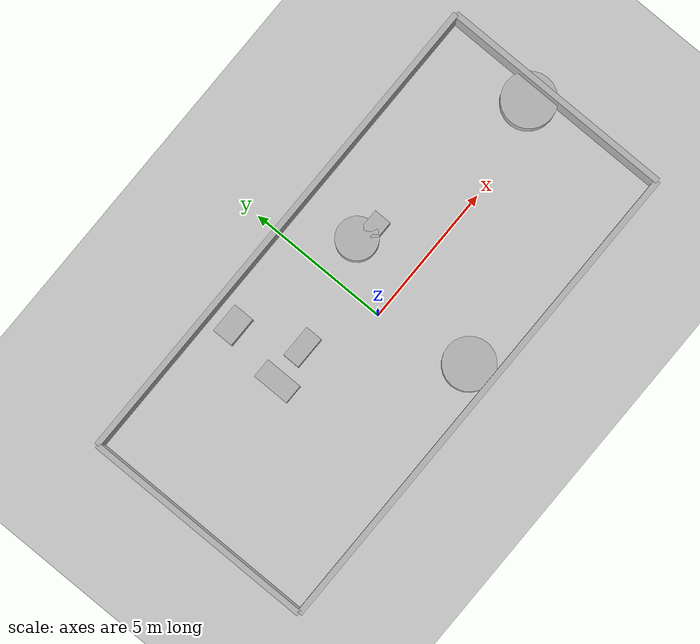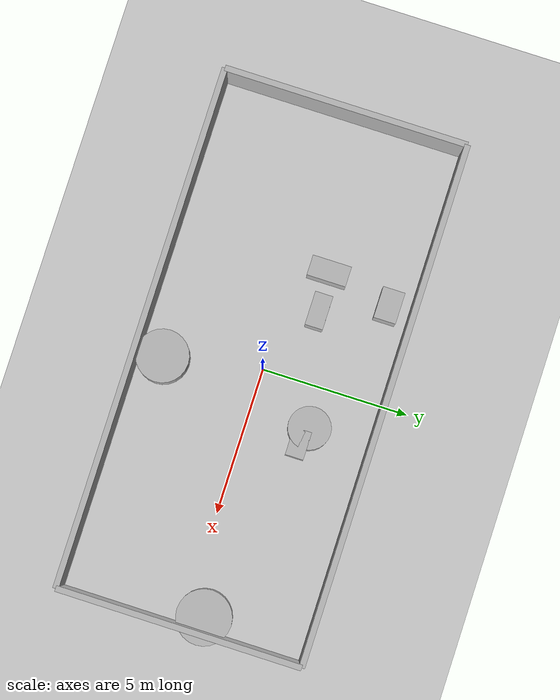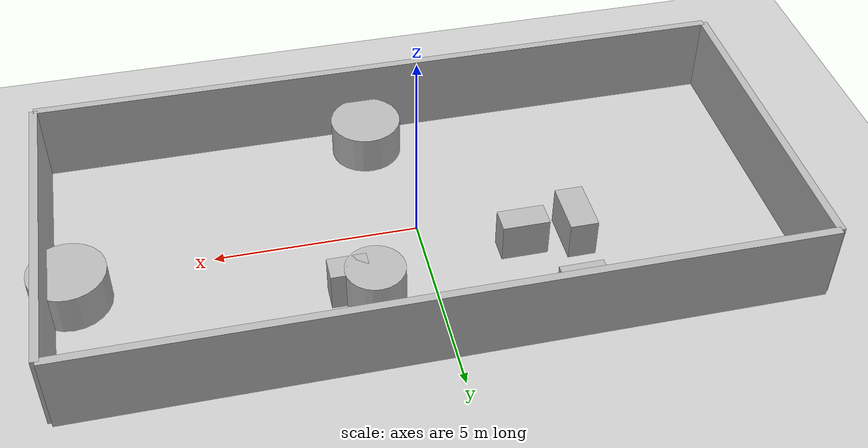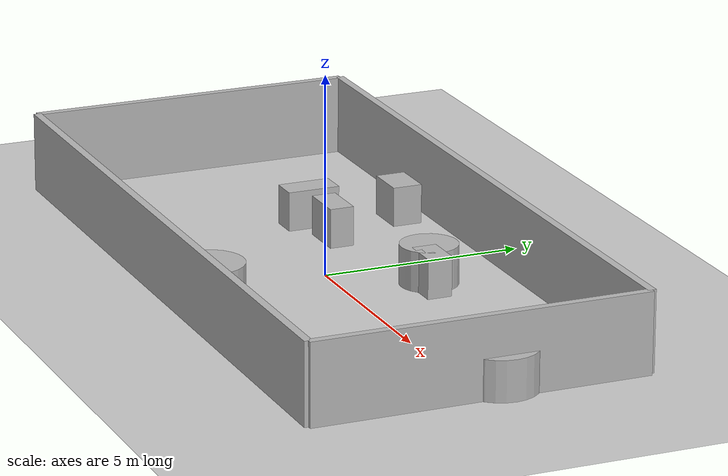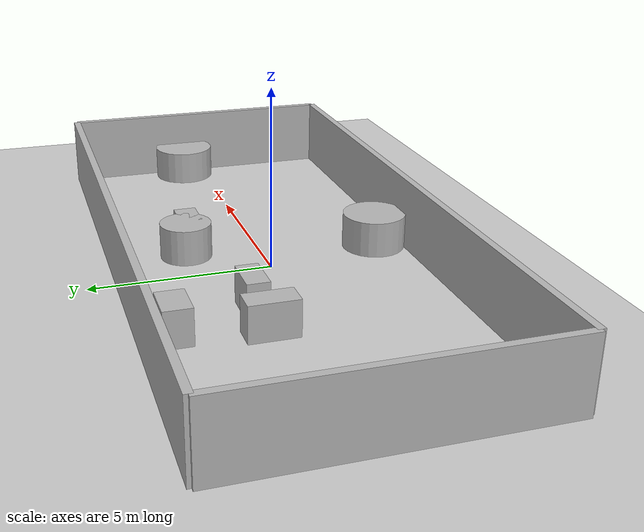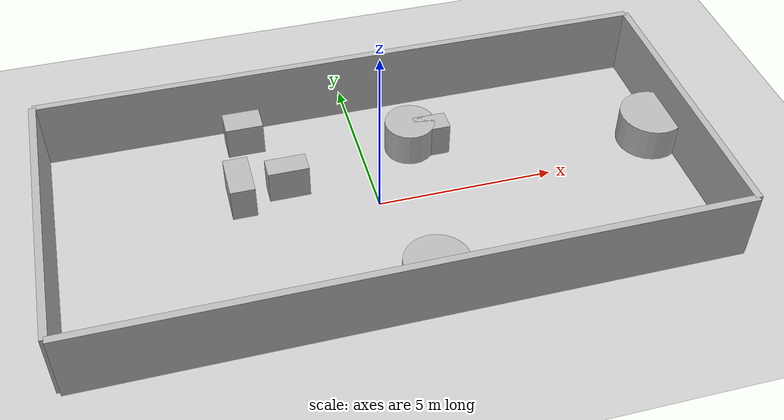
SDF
<?xml version="1.0"?>
<sdf version="1.6">
  <world name="env_7">

    <include><uri>model://ground_plane</uri></include>
    <include><uri>model://sun</uri></include>

    <!-- WALLS -->
    <model name="wall_north"><static>true</static><pose>0 4.14777569060814 1 0 0 0</pose>
      <link name="link"><collision name="collision">
        <geometry><box><size>17.733083181132695 0.2 2</size></box></geometry>
      </collision><visual name="visual">
        <geometry><box><size>17.733083181132695 0.2 2</size></box></geometry>
      </visual></link>
    </model>

    <model name="wall_south"><static>true</static><pose>0 -4.14777569060814 1 0 0 0</pose>
      <link name="link"><collision name="collision">
        <geometry><box><size>17.733083181132695 0.2 2</size></box></geometry>
      </collision><visual name="visual">
        <geometry><box><size>17.733083181132695 0.2 2</size></box></geometry>
      </visual></link>
    </model>

    <model name="wall_east"><static>true</static><pose>8.866541590566348 0 1 0 0 1.57</pose>
      <link name="link"><collision name="collision">
        <geometry><box><size>8.29555138121628 0.2 2</size></box></geometry>
      </collision><visual name="visual">
        <geometry><box><size>8.29555138121628 0.2 2</size></box></geometry>
      </visual></link>
    </model>

    <model name="wall_west"><static>true</static><pose>-8.866541590566348 0 1 0 0 1.57</pose>
      <link name="link"><collision name="collision">
        <geometry><box><size>8.29555138121628 0.2 2</size></box></geometry>
      </collision><visual name="visual">
        <geometry><box><size>8.29555138121628 0.2 2</size></box></geometry>
      </visual></link>
    </model>

    <!-- SENSOR -->

    <model name="lidar_sensor">
      <static>true</static>
      <pose>2.596444015979582 -1.7645165417060544 0.4 0 0 0</pose>
      <link name="link">
        <sensor name="lidar" type="ray">
          <pose>0 0 0 0 0 0</pose>
          <visualize>true</visualize>
          <always_on>true</always_on>
          <update_rate>10</update_rate>
          <ray>
            <scan><horizontal>
              <samples>180</samples>
              <resolution>1</resolution>
              <min_angle>-3.14159</min_angle>
              <max_angle>3.14159</max_angle>
            </horizontal></scan>
            <range><min>0.15</min><max>20.0</max><resolution>0.01</resolution></range>
          </ray>
          <plugin name="lidar_plugin" filename="liblidar_plugin.so"/>
        </sensor>
      </link>
    </model>

    <!-- OBSTACLES -->

    <model name="obstacle_0">
      <static>true</static>
      <pose>-3.2098959480395273 3.325703140037402 0.5 0 0 0</pose>
      <link name="link">
        <collision name="collision">
          <geometry><box><size>1.07 0.75 1.0</size></box></geometry>
        </collision>
        <visual name="visual">
          <geometry><box><size>1.07 0.75 1.0</size></box></geometry>
        </visual>
      </link>
    </model>

    <model name="obstacle_1">
      <static>true</static>
      <pose>0.6452358811658883 -3.252190943672521 0.5 0 0 0</pose>
      <link name="link">
        <collision name="collision">
          <geometry><cylinder><radius>0.89</radius><length>1.0</length></cylinder></geometry>
        </collision>
        <visual name="visual">
          <geometry><cylinder><radius>0.89</radius><length>1.0</length></cylinder></geometry>
        </visual>
      </link>
    </model>

    <model name="obstacle_2">
      <static>true</static>
      <pose>-3.685985305989682 1.101321725120445 0.5 0 0 0</pose>
      <link name="link">
        <collision name="collision">
          <geometry><box><size>0.69 1.33 1.0</size></box></geometry>
        </collision>
        <visual name="visual">
          <geometry><box><size>0.69 1.33 1.0</size></box></geometry>
        </visual>
      </link>
    </model>

    <model name="obstacle_3">
      <static>true</static>
      <pose>2.0218800939541275 1.8652926438354527 0.5 0 0 0</pose>
      <link name="link">
        <collision name="collision">
          <geometry><box><size>0.94 0.62 1.0</size></box></geometry>
        </collision>
        <visual name="visual">
          <geometry><box><size>0.94 0.62 1.0</size></box></geometry>
        </visual>
      </link>
    </model>

    <model name="obstacle_4">
      <static>true</static>
      <pose>-2.339888585696688 1.177452099354479 0.5 0 0 0</pose>
      <link name="link">
        <collision name="collision">
          <geometry><box><size>1.15 0.61 1.0</size></box></geometry>
        </collision>
        <visual name="visual">
          <geometry><box><size>1.15 0.61 1.0</size></box></geometry>
        </visual>
      </link>
    </model>

    <model name="obstacle_5">
      <static>true</static>
      <pose>8.345900585530854 0.6597381381368459 0.5 0 0 0</pose>
      <link name="link">
        <collision name="collision">
          <geometry><cylinder><radius>0.93</radius><length>1.0</length></cylinder></geometry>
        </collision>
        <visual name="visual">
          <geometry><cylinder><radius>0.93</radius><length>1.0</length></cylinder></geometry>
        </visual>
      </link>
    </model>

    <model name="obstacle_6">
      <static>true</static>
      <pose>1.4327476088826128 2.057151565486704 0.5 0 0 0</pose>
      <link name="link">
        <collision name="collision">
          <geometry><cylinder><radius>0.72</radius><length>1.0</length></cylinder></geometry>
        </collision>
        <visual name="visual">
          <geometry><cylinder><radius>0.72</radius><length>1.0</length></cylinder></geometry>
        </visual>
      </link>
    </model>

  </world>
</sdf>
